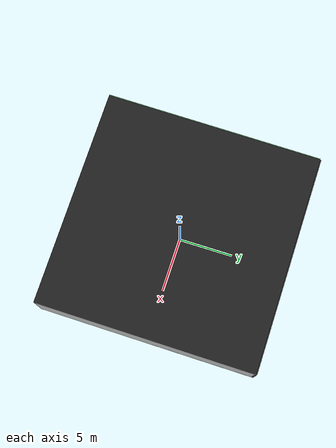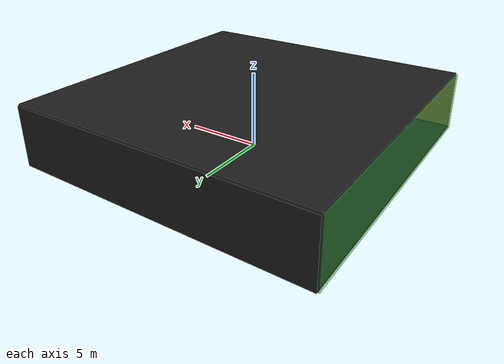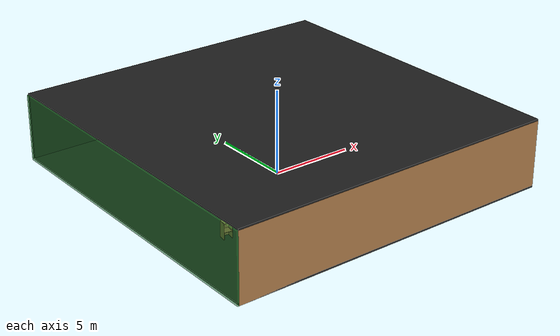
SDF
<sdf version="1.4">
 <world name="default">
  <physics type="ode">
   <max_step_size>0.001</max_step_size>
   <real_time_factor>1</real_time_factor>
   <real_time_update_rate>1000</real_time_update_rate>
   <gravity>0 0 -9.8</gravity>
  </physics>
  <scene><ambient>0.4 0.4 0.4 1</ambient><background>0.7 0.7 0.7 1</background><shadows>1</shadows></scene>
  <model name="Surrounding">
   <static>1</static>
   <link name="Ceiling">
    <collision name="Ceiling_Collision"><geometry><box><size>20 20 0.1</size></box></geometry></collision>
    <visual name="Ceiling_Visual">
     <geometry><box><size>20 20 0.1</size></box></geometry>
     <material>
      <script><uri>file://media/materials/scripts/gazebo.material</uri><name>Gazebo/FlatBlack</name></script>
     </material>
    </visual>
    <pose>0 0 4.05 0 0 0</pose>
   </link>
   <link name="Wall_South">
    <collision name="Wall_South_Collision">
     <geometry><box><size>20 0 4</size></box></geometry>
     <pose>0 0 2 0 -0 0</pose>
    </collision>
    <visual name="Wall_South_Visual">
     <pose>0 0 2 0 -0 0</pose>
     <geometry><box><size>20 0 4</size></box></geometry>
     <material>
      <script><uri>file://media/materials/scripts/gazebo.material</uri><name>Gazebo/Wood</name></script>
     </material>
    </visual>
    <velocity_decay><linear>0</linear><angular>0</angular></velocity_decay>
    <pose>0 -10 0 0 -0 0</pose>
   </link>
   <link name="Wall_East">
    <collision name="Wall_21_Collision">
     <geometry><box><size>20 0 4</size></box></geometry>
     <pose>0 0 2 0 -0 0</pose>
    </collision>
    <visual name="Wall_21_Visual">
     <pose>0 0 2 0 -0 0</pose>
     <geometry><box><size>20 0 4</size></box></geometry>
     <material>
      <script><uri>file://media/materials/scripts/gazebo.material</uri><name>Gazebo/Pioneer2Body</name></script>
     </material>
    </visual>
    <velocity_decay><linear>0</linear><angular>0</angular></velocity_decay>
    <pose>10 0 0 0 -0 1.5708</pose>
   </link>
   <link name="Wall_North">
    <collision name="Wall_22_Collision">
     <geometry><box><size>20 0.2 4</size></box></geometry>
     <pose>0 0 2 0 -0 0</pose>
    </collision>
    <visual name="Wall_22_Visual">
     <pose>0 0 2 0 -0 0</pose>
     <geometry><box><size>20 0.2 4</size></box></geometry>
     <material>
      <script><uri>file://media/materials/scripts/gazebo.material</uri><name>Gazebo/Black</name></script>
     </material>
    </visual>
    <velocity_decay><linear>0</linear><angular>0</angular></velocity_decay>
    <pose>0 10 0 0 -0 0</pose>
   </link>
   <link name="Wall_West">
    <collision name="Wall_23_Collision">
     <geometry><box><size>20 0.2 4</size></box></geometry>
     <pose>0 0 2 0 -0 0</pose>
    </collision>
    <visual name="Wall_23_Visual">
     <pose>0 0 2 0 -0 0</pose>
     <geometry><box><size>20 0.2 4</size></box></geometry>
     <material>
      <script><uri>file://media/materials/scripts/gazebo.material</uri><name>Gazebo/GreenTransparent</name></script>
     </material>
    </visual>
    <velocity_decay><linear>0</linear><angular>0</angular></velocity_decay>
    <pose>-10 0 0 0 0 -1.5708</pose>
   </link>
   <link name="Ground_link">
    <collision name="collision">
     <pose>0 0 .05 0 -0 0</pose>
     <geometry><box><size>20 20 0.1</size></box></geometry>
    </collision>
    <visual name="visual">
     <pose>0 0 .05 0 -0 0</pose>
     <geometry><box><size>20 20 0.1</size></box></geometry>
     <material>
      <script><uri>file://media/materials/scripts/gazebo.material</uri><name>Gazebo/FlatBlack</name></script>
     </material>
    </visual>
   </link>
   <static>1</static>
  </model>
  <spherical_coordinates>
   <surface_model>EARTH_WGS84</surface_model>
   <latitude_deg>0</latitude_deg>
   <longitude_deg>0</longitude_deg>
   <elevation>0</elevation>
   <heading_deg>0</heading_deg>
  </spherical_coordinates>
  <light name="lightball_0" type="diffuse">
   <diffuse>0.8 0.8 0.8 1</diffuse>
   <specular>0.2 0.2 0.2 1</specular>
   <attenuation>
    <range>100</range>
    <constant>0.7</constant>
    <linear>0.01</linear>
    <quadratic>0.001</quadratic>
   </attenuation>
   <direction>-0.5 0.1 -0.9</direction>
   <pose>1.20365790903 -1.95927504746 2.34369131172 0 0 0</pose>
  </light>
  <light name="lightball_1" type="diffuse">
   <diffuse>0.8 0.8 0.8 1</diffuse>
   <specular>0.2 0.2 0.2 1</specular>
   <attenuation>
    <range>100</range>
    <constant>0.7</constant>
    <linear>0.01</linear>
    <quadratic>0.001</quadratic>
   </attenuation>
   <direction>-0.5 0.1 -0.9</direction>
   <pose>-9.02137052842 -1.77461959004 0.64421039146 0 0 0</pose>
  </light>
  <light name="lightball_2" type="diffuse">
   <diffuse>0.8 0.8 0.8 1</diffuse>
   <specular>0.2 0.2 0.2 1</specular>
   <attenuation>
    <range>100</range>
    <constant>0.7</constant>
    <linear>0.01</linear>
    <quadratic>0.001</quadratic>
   </attenuation>
   <direction>-0.5 0.1 -0.9</direction>
   <pose>-3.88692983465 9.39678209112 3.02826036475 0 0 0</pose>
  </light>
  <light name="lightball_3" type="diffuse">
   <diffuse>0.8 0.8 0.8 1</diffuse>
   <specular>0.2 0.2 0.2 1</specular>
   <attenuation>
    <range>100</range>
    <constant>0.7</constant>
    <linear>0.01</linear>
    <quadratic>0.001</quadratic>
   </attenuation>
   <direction>-0.5 0.1 -0.9</direction>
   <pose>-0.600282432669 5.8440434274 2.96187845941 0 0 0</pose>
  </light>
  <light name="lightball_4" type="diffuse">
   <diffuse>0.8 0.8 0.8 1</diffuse>
   <specular>0.2 0.2 0.2 1</specular>
   <attenuation>
    <range>100</range>
    <constant>0.7</constant>
    <linear>0.01</linear>
    <quadratic>0.001</quadratic>
   </attenuation>
   <direction>-0.5 0.1 -0.9</direction>
   <pose>2.35659873536 1.77165872866 3.17373857148 0 0 0</pose>
  </light>
  <light name="lightball_5" type="diffuse">
   <diffuse>0.8 0.8 0.8 1</diffuse>
   <specular>0.2 0.2 0.2 1</specular>
   <attenuation>
    <range>100</range>
    <constant>0.7</constant>
    <linear>0.01</linear>
    <quadratic>0.001</quadratic>
   </attenuation>
   <direction>-0.5 0.1 -0.9</direction>
   <pose>-0.230916427487 -8.78323867018 2.04538831533 0 0 0</pose>
  </light>
  <light name="lightball_6" type="diffuse">
   <diffuse>0.8 0.8 0.8 1</diffuse>
   <specular>0.2 0.2 0.2 1</specular>
   <attenuation>
    <range>100</range>
    <constant>0.7</constant>
    <linear>0.01</linear>
    <quadratic>0.001</quadratic>
   </attenuation>
   <direction>-0.5 0.1 -0.9</direction>
   <pose>-6.30699047765 3.05906324159 1.07240194882 0 0 0</pose>
  </light>
  <light name="lightball_7" type="diffuse">
   <diffuse>0.8 0.8 0.8 1</diffuse>
   <specular>0.2 0.2 0.2 1</specular>
   <attenuation>
    <range>100</range>
    <constant>0.7</constant>
    <linear>0.01</linear>
    <quadratic>0.001</quadratic>
   </attenuation>
   <direction>-0.5 0.1 -0.9</direction>
   <pose>2.68037727248 5.44654759555 2.87446778156 0 0 0</pose>
  </light>
  <include><uri>model://cabinet</uri><pose>-6.72569616319 -4.43173849013 0 0 0 1.39868671927</pose></include>
  <include><uri>model://table</uri><pose>-4.27618519602 -1.28932843345 0 0 0 0.984820719298</pose></include>
  <include><uri>model://cabinet</uri><pose>-4.55204625344 7.20116753956 0 0 0 0.567862196128</pose></include>
  <include><uri>model://cabinet</uri><pose>-1.76297278378 0.92202946693 0 0 0 0.76168889808</pose></include>
  <include><uri>model://table</uri><pose>1.25259039636 2.04536105386 0 0 0 0.94683350991</pose></include>
  <include><uri>model://cabinet</uri><pose>1.66182457142 5.2960583512 0 0 0 1.63134614511</pose></include>
  <include>
   <uri>model://construction_cone</uri>
   <pose>5.08271013735 -6.78556337763 0 0 0 1.51881744077</pose>
  </include>
  <include><uri>model://cabinet</uri><pose>3.74132612239 -2.15203958679 0 0 0 0.6476825837</pose></include>
  <include>
   <uri>model://construction_cone</uri>
   <pose>4.67575779751 2.17895524919 0 0 0 1.52313733707</pose>
  </include>
  <include><uri>model://table</uri><pose>5.00880055487 7.82258003306 0 0 0 2.66382449184</pose></include>
  <include><uri>model://table</uri><pose>7.07187513838 -5.05971442409 0 0 0 2.84887064964</pose></include>
  <include><uri>model://table</uri><pose>8.13028715174 -1.59003666954 0 0 0 0.327163525406</pose></include>
  <include>
   <uri>model://construction_cone</uri>
   <pose>7.92497917273 5.16625367515 0 0 0 2.27542369569</pose>
  </include>
 </world>
</sdf>

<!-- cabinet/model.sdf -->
<sdf version="1.5">
  <model name="cabinet">
    <static>true</static>
    <link name="cabinet_bottom_plate">
      <inertial>
        <pose>0 0 -1 0 0 0</pose>
        <inertia>
          <ixx>2.050000</ixx>
          <ixy>0</ixy>
          <ixz>0</ixz>
          <iyy>2.050000</iyy>
          <iyz>0</iyz>
          <izz>2.050000</izz>
        </inertia>
        <mass>25.000000</mass>
      </inertial>
      <collision name="cabinet_bottom_plate_geom">
        <pose>0 0 0.010000 0 0 0</pose>
        <geometry>
          <box>
            <size>0.450000 0.450000 0.020000</size>
          </box>
        </geometry>
      </collision>
      <visual name="cabinet_bottom_plate_geom_visual">
        <pose>0 0 0.010000 0 0 0</pose>
        <geometry>
          <box>
            <size>0.450000 0.450000 0.020000</size>
          </box>
        </geometry>
        <material>
          <script>
            <uri>model://media/materials/scripts/gazebo.material</uri>
            <name>Gazebo/Wood</name>
          </script>
        </material>
      </visual>
      <collision name="cabinet_bottom_plate_geom_cabinet_back_plate">
        <pose>0.235000 0 0.510000 0 0 0</pose>
        <geometry>
          <box>
            <size>0.020000 0.450000 1.020000</size>
          </box>
        </geometry>
      </collision>
      <visual name="cabinet_bottom_plate_geom_cabinet_back_plate_visual">
        <pose>0.235000 0 0.510000 0 0 0</pose>
        <geometry>
          <box>
            <size>0.020000 0.450000 1.020000</size>
          </box>
        </geometry>
        <material>
          <script>
            <uri>model://media/materials/scripts/gazebo.material</uri>
            <name>Gazebo/Wood</name>
          </script>
        </material>
      </visual>
      <collision name="cabinet_bottom_plate_geom_cabinet_left_plate">
        <pose>0 0.235000 0.510000 0 0 0</pose>
        <geometry>
          <box>
            <size>0.450000 0.020000 1.020000</size>
          </box>
        </geometry>
      </collision>
      <visual name="cabinet_bottom_plate_geom_cabinet_left_plate_visual">
        <pose>0 0.235000 0.510000 0 0 0</pose>
        <geometry>
          <box>
            <size>0.450000 0.020000 1.020000</size>
          </box>
        </geometry>
        <material>
          <script>
            <uri>model://media/materials/scripts/gazebo.material</uri>
            <name>Gazebo/Wood</name>
          </script>
        </material>
      </visual>
      <collision name="cabinet_bottom_plate_geom_cabinet_middle_plate">
        <pose>0 0 0.510000 0 0 0</pose>
        <geometry>
          <box>
            <size>0.450000 0.450000 0.020000</size>
          </box>
        </geometry>
      </collision>
      <visual name="cabinet_bottom_plate_geom_cabinet_middle_plate_visual">
        <pose>0 0 0.510000 0 0 0</pose>
        <geometry>
          <box>
            <size>0.450000 0.450000 0.020000</size>
          </box>
        </geometry>
        <material>
          <script>
            <uri>model://media/materials/scripts/gazebo.material</uri>
            <name>Gazebo/Wood</name>
          </script>
        </material>
      </visual>
      <collision name="cabinet_bottom_plate_geom_cabinet_right_plate">
        <pose>0 -0.235000 0.510000 0 0 0</pose>
        <geometry>
          <box>
            <size>0.450000 0.020000 1.020000</size>
          </box>
        </geometry>
      </collision>
      <visual name="cabinet_bottom_plate_geom_cabinet_right_plate_visual">
        <pose>0 -0.235000 0.510000 0 0 0</pose>
        <geometry>
          <box>
            <size>0.450000 0.020000 1.020000</size>
          </box>
        </geometry>
        <material>
          <script>
            <uri>model://media/materials/scripts/gazebo.material</uri>
            <name>Gazebo/Wood</name>
          </script>
        </material>
      </visual>
      <collision name="cabinet_bottom_plate_geom_cabinet_top_plate">
        <pose>0 0 1.010000 0 0 0</pose>
        <geometry>
          <box>
            <size>0.450000 0.450000 0.020000</size>
          </box>
        </geometry>
      </collision>
      <visual name="cabinet_bottom_plate_geom_cabinet_top_plate_visual">
        <pose>0 0 1.010000 0 0 0</pose>
        <geometry>
          <box>
            <size>0.450000 0.450000 0.020000</size>
          </box>
        </geometry>
        <material>
          <script>
            <uri>model://media/materials/scripts/gazebo.material</uri>
            <name>Gazebo/Wood</name>
          </script>
        </material>
      </visual>
    </link>
  </model>
</sdf>

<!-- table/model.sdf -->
<sdf version="1.5">
  <model name="table">
    <static>true</static>
    <link name="link">
      <collision name="surface">
        <pose>0 0 1.0 0 0 0</pose>
        <geometry>
          <box>
            <size>1.5 0.8 0.03</size>
          </box>
        </geometry>
        <surface>
          <friction>
            <ode>
              <mu>0.6</mu>
              <mu2>0.6</mu2>
            </ode>
          </friction>
        </surface>
      </collision>
      <visual name="visual1">
        <pose>0 0 1.0 0 0 0</pose>
        <geometry>
          <box>
            <size>1.5 0.8 0.03</size>
          </box>
        </geometry>
        <material>
          <script>
            <uri>model://media/materials/scripts/gazebo.material</uri>
            <name>Gazebo/Wood</name>
          </script>
        </material>
      </visual>
      <collision name="front_left_leg">
        <pose>0.68 0.38 0.5 0 0 0</pose>
        <geometry>
          <cylinder>
            <radius>0.02</radius>
            <length>1.0</length>
          </cylinder>
        </geometry>
      </collision>
      <visual name="front_left_leg">
        <pose>0.68 0.38 0.5 0 0 0</pose>
        <geometry>
          <cylinder>
            <radius>0.02</radius>
            <length>1.0</length>
          </cylinder>
        </geometry>
        <material>
          <script>
            <uri>model://media/materials/scripts/gazebo.material</uri>
            <name>Gazebo/Grey</name>
          </script>
        </material>
      </visual>
      <collision name="front_right_leg">
        <pose>0.68 -0.38 0.5 0 0 0</pose>
        <geometry>
          <cylinder>
            <radius>0.02</radius>
            <length>1.0</length>
          </cylinder>
        </geometry>
      </collision>
      <visual name="front_right_leg">
        <pose>0.68 -0.38 0.5 0 0 0</pose>
        <geometry>
          <cylinder>
            <radius>0.02</radius>
            <length>1.0</length>
          </cylinder>
        </geometry>
        <material>
          <script>
            <uri>model://media/materials/scripts/gazebo.material</uri>
            <name>Gazebo/Grey</name>
          </script>
        </material>
      </visual>
      <collision name="back_right_leg">
        <pose>-0.68 -0.38 0.5 0 0 0</pose>
        <geometry>
          <cylinder>
            <radius>0.02</radius>
            <length>1.0</length>
          </cylinder>
        </geometry>
      </collision>
      <visual name="back_right_leg">
        <pose>-0.68 -0.38 0.5 0 0 0</pose>
        <geometry>
          <cylinder>
            <radius>0.02</radius>
            <length>1.0</length>
          </cylinder>
        </geometry>
        <material>
          <script>
            <uri>model://media/materials/scripts/gazebo.material</uri>
            <name>Gazebo/Grey</name>
          </script>
        </material>
      </visual>
      <collision name="back_left_leg">
        <pose>-0.68 0.38 0.5 0 0 0</pose>
        <geometry>
          <cylinder>
            <radius>0.02</radius>
            <length>1.0</length>
          </cylinder>
        </geometry>
      </collision>
      <visual name="back_left_leg">
        <pose>-0.68 0.38 0.5 0 0 0</pose>
        <geometry>
          <cylinder>
            <radius>0.02</radius>
            <length>1.0</length>
          </cylinder>
        </geometry>
        <material>
          <script>
            <uri>model://media/materials/scripts/gazebo.material</uri>
            <name>Gazebo/Grey</name>
          </script>
        </material>
      </visual>
    </link>
  </model>
</sdf>

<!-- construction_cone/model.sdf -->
<sdf version="1.5">
  <model name="Construction Cone">
    <link name="link">
      <collision name="collision">
        <geometry>
          <mesh>
            <scale>10 10 10</scale>
            <uri>file://isr-testbed/construction_cone/meshes/construction_cone.dae</uri>
          </mesh>
        </geometry>
      </collision>
      <visual name="visual">
        <geometry>
          <mesh>
            <scale>10 10 10</scale>
            <uri>file://isr-testbed/construction_cone/meshes/construction_cone.dae</uri>
          </mesh>
        </geometry>
      </visual>
    </link>
  </model>
</sdf>
